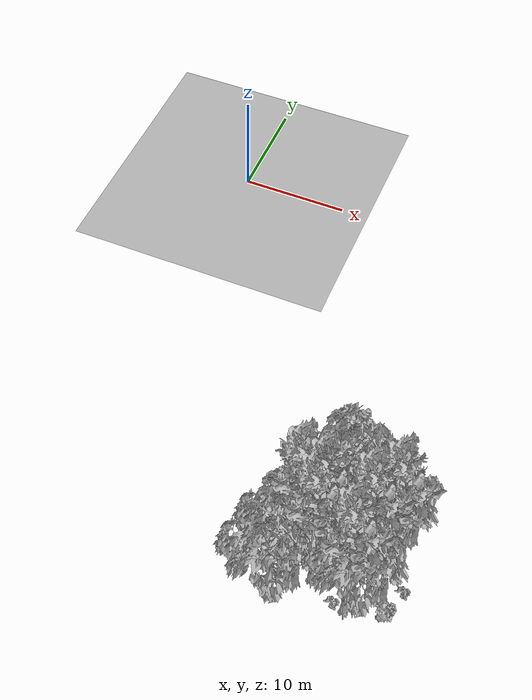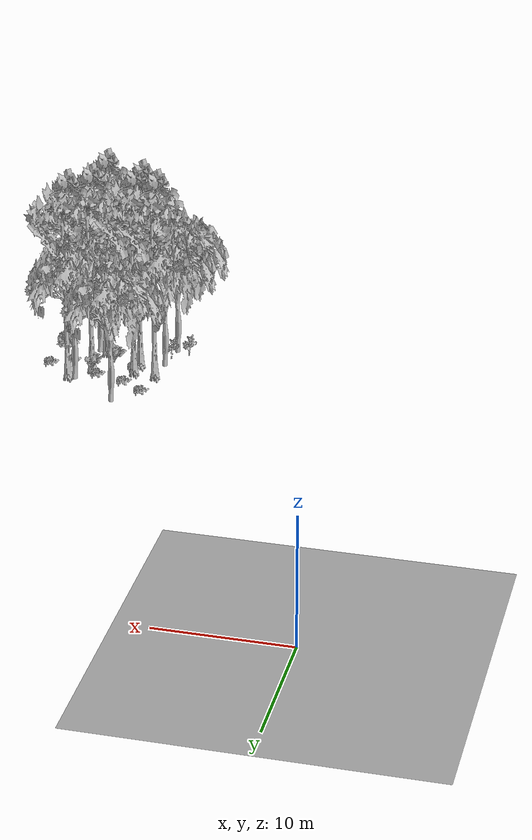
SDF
<sdf version="1.7">
 <world name="default">
  <model name="ground_plane">
   <static>1</static>
   <link name="link">
    <collision name="collision">
     <pose>-50 0 0 0 -0 0</pose>
     <geometry><plane><normal>0 0 1</normal><size>80 80</size></plane></geometry>
     <surface><contact><ode><min_depth>0.01</min_depth><max_vel>0</max_vel></ode></contact></surface>
    </collision>
    <visual name="grass">
     <cast_shadows>0</cast_shadows>
     <geometry>
      <mesh>
       <scale>0.46714285714285714 0.46714285714285714 0.1</scale>
       <uri>file://grass_plane/meshes/grass_plane.dae</uri>
      </mesh>
     </geometry>
    </visual>
   </link>
  </model>
  <model name="Tree 0">
   <static>1</static>
   <pose>26.365670534095116 -34.29726141774025 0 1.57079 -0 0</pose>
   <link name="link">
    <collision name="collision">
     <geometry><mesh><scale>3.5 5 3.5</scale><uri>model://tree_9/meshes/tree_9.obj</uri></mesh></geometry>
    </collision>
    <visual name="visual">
     <geometry><mesh><scale>3.5 5 3.5</scale><uri>model://tree_9/meshes/tree_9.obj</uri></mesh></geometry>
    </visual>
   </link>
  </model>
  <model name="Tree 37">
   <static>1</static>
   <pose>24.551823431876542 -38.94281338013918 0 1.57079 -0 0</pose>
   <link name="link">
    <collision name="collision">
     <geometry><mesh><scale>3.5 5 3.5</scale><uri>model://tree_9/meshes/tree_9.obj</uri></mesh></geometry>
    </collision>
    <visual name="visual">
     <geometry><mesh><scale>3.5 5 3.5</scale><uri>model://tree_9/meshes/tree_9.obj</uri></mesh></geometry>
    </visual>
   </link>
  </model>
  <model name="Tree 73">
   <static>1</static>
   <pose>21.498788642779893 -36.14084156872067 0 1.57079 -0 0</pose>
   <link name="link">
    <collision name="collision">
     <geometry><mesh><scale>3.5 5 3.5</scale><uri>model://tree_9/meshes/tree_9.obj</uri></mesh></geometry>
    </collision>
    <visual name="visual">
     <geometry><mesh><scale>3.5 5 3.5</scale><uri>model://tree_9/meshes/tree_9.obj</uri></mesh></geometry>
    </visual>
   </link>
  </model>
  <model name="Tree 264">
   <static>1</static>
   <pose>21.35924062898971 -37.50093798511435 0 1.57079 -0 0</pose>
   <link name="link">
    <collision name="collision">
     <geometry><mesh><scale>3.5 5 3.5</scale><uri>model://tree_9/meshes/tree_9.obj</uri></mesh></geometry>
    </collision>
    <visual name="visual">
     <geometry><mesh><scale>3.5 5 3.5</scale><uri>model://tree_9/meshes/tree_9.obj</uri></mesh></geometry>
    </visual>
   </link>
  </model>
  <model name="Tree 331">
   <static>1</static>
   <pose>19.186208184037852 -37.35512509268272 0 1.57079 -0 0</pose>
   <link name="link">
    <collision name="collision">
     <geometry><mesh><scale>3.5 5 3.5</scale><uri>model://tree_2/meshes/tree_2.obj</uri></mesh></geometry>
    </collision>
    <visual name="visual">
     <geometry><mesh><scale>3.5 5 3.5</scale><uri>model://tree_2/meshes/tree_2.obj</uri></mesh></geometry>
    </visual>
   </link>
  </model>
  <model name="Tree 347">
   <static>1</static>
   <pose>24.863633949130893 -35.88209329109177 0 1.57079 -0 0</pose>
   <link name="link">
    <collision name="collision">
     <geometry><mesh><scale>3.5 5 3.5</scale><uri>model://tree_9/meshes/tree_9.obj</uri></mesh></geometry>
    </collision>
    <visual name="visual">
     <geometry><mesh><scale>3.5 5 3.5</scale><uri>model://tree_9/meshes/tree_9.obj</uri></mesh></geometry>
    </visual>
   </link>
  </model>
  <model name="Tree 453">
   <static>1</static>
   <pose>18.857431620565954 -39.96904018411829 0 1.57079 -0 0</pose>
   <link name="link">
    <collision name="collision">
     <geometry><mesh><scale>3.5 5 3.5</scale><uri>model://tree_2/meshes/tree_2.obj</uri></mesh></geometry>
    </collision>
    <visual name="visual">
     <geometry><mesh><scale>3.5 5 3.5</scale><uri>model://tree_2/meshes/tree_2.obj</uri></mesh></geometry>
    </visual>
   </link>
  </model>
  <model name="Tree 461">
   <static>1</static>
   <pose>24.86876233108935 -38.56500119443688 0 1.57079 -0 0</pose>
   <link name="link">
    <collision name="collision">
     <geometry><mesh><scale>3.5 5 3.5</scale><uri>model://tree_2/meshes/tree_2.obj</uri></mesh></geometry>
    </collision>
    <visual name="visual">
     <geometry><mesh><scale>3.5 5 3.5</scale><uri>model://tree_2/meshes/tree_2.obj</uri></mesh></geometry>
    </visual>
   </link>
  </model>
  <model name="Tree 572">
   <static>1</static>
   <pose>21.632556651155227 -30.56825681799797 0 1.57079 -0 0</pose>
   <link name="link">
    <collision name="collision">
     <geometry><mesh><scale>3.5 5 3.5</scale><uri>model://tree_2/meshes/tree_2.obj</uri></mesh></geometry>
    </collision>
    <visual name="visual">
     <geometry><mesh><scale>3.5 5 3.5</scale><uri>model://tree_2/meshes/tree_2.obj</uri></mesh></geometry>
    </visual>
   </link>
  </model>
  <model name="Tree 589">
   <static>1</static>
   <pose>25.45622417846181 -33.54120456081823 0 1.57079 -0 0</pose>
   <link name="link">
    <collision name="collision">
     <geometry><mesh><scale>3.5 5 3.5</scale><uri>model://tree_2/meshes/tree_2.obj</uri></mesh></geometry>
    </collision>
    <visual name="visual">
     <geometry><mesh><scale>3.5 5 3.5</scale><uri>model://tree_2/meshes/tree_2.obj</uri></mesh></geometry>
    </visual>
   </link>
  </model>
  <model name="Tree 614">
   <static>1</static>
   <pose>19.72452354816197 -35.877890817409266 0 1.57079 -0 0</pose>
   <link name="link">
    <collision name="collision">
     <geometry><mesh><scale>3.5 5 3.5</scale><uri>model://tree_9/meshes/tree_9.obj</uri></mesh></geometry>
    </collision>
    <visual name="visual">
     <geometry><mesh><scale>3.5 5 3.5</scale><uri>model://tree_9/meshes/tree_9.obj</uri></mesh></geometry>
    </visual>
   </link>
  </model>
  <model name="Bush 4">
   <static>1</static>
   <pose>23.329204030782314 -36.91161911553173 0 1.57079 -0 0</pose>
   <link name="link">
    <collision name="collision">
     <geometry><mesh><scale>2 2 2</scale><uri>model://bush_0/meshes/bush_0.obj</uri></mesh></geometry>
     <surface><contact><collide_without_contact>false</collide_without_contact></contact></surface>
    </collision>
    <visual name="visual">
     <geometry><mesh><scale>2 2 2</scale><uri>model://bush_0/meshes/bush_0.obj</uri></mesh></geometry>
    </visual>
   </link>
  </model>
  <model name="Bush 60">
   <static>1</static>
   <pose>26.648925421087725 -36.5752505203978 0 1.57079 -0 0</pose>
   <link name="link">
    <collision name="collision">
     <geometry><mesh><scale>2 2 2</scale><uri>model://bush_2/meshes/bush_2.obj</uri></mesh></geometry>
     <surface><contact><collide_without_contact>false</collide_without_contact></contact></surface>
    </collision>
    <visual name="visual">
     <geometry><mesh><scale>2 2 2</scale><uri>model://bush_2/meshes/bush_2.obj</uri></mesh></geometry>
    </visual>
   </link>
  </model>
  <model name="Bush 82">
   <static>1</static>
   <pose>24.691328176599676 -35.35399988062564 0 1.57079 -0 0</pose>
   <link name="link">
    <collision name="collision">
     <geometry><mesh><scale>2 2 2</scale><uri>model://bush_0/meshes/bush_0.obj</uri></mesh></geometry>
     <surface><contact><collide_without_contact>false</collide_without_contact></contact></surface>
    </collision>
    <visual name="visual">
     <geometry><mesh><scale>2 2 2</scale><uri>model://bush_0/meshes/bush_0.obj</uri></mesh></geometry>
    </visual>
   </link>
  </model>
  <model name="Bush 169">
   <static>1</static>
   <pose>21.578635549209878 -36.50540210387629 0 1.57079 -0 0</pose>
   <link name="link">
    <collision name="collision">
     <geometry><mesh><scale>2 2 2</scale><uri>model://bush_2/meshes/bush_2.obj</uri></mesh></geometry>
     <surface><contact><collide_without_contact>false</collide_without_contact></contact></surface>
    </collision>
    <visual name="visual">
     <geometry><mesh><scale>2 2 2</scale><uri>model://bush_2/meshes/bush_2.obj</uri></mesh></geometry>
    </visual>
   </link>
  </model>
  <model name="Bush 197">
   <static>1</static>
   <pose>24.102743171423313 -34.71340042521576 0 1.57079 -0 0</pose>
   <link name="link">
    <collision name="collision">
     <geometry><mesh><scale>2 2 2</scale><uri>model://bush_2/meshes/bush_2.obj</uri></mesh></geometry>
     <surface><contact><collide_without_contact>false</collide_without_contact></contact></surface>
    </collision>
    <visual name="visual">
     <geometry><mesh><scale>2 2 2</scale><uri>model://bush_2/meshes/bush_2.obj</uri></mesh></geometry>
    </visual>
   </link>
  </model>
  <model name="Bush 202">
   <static>1</static>
   <pose>23.527878102011556 -38.68157285573382 0 1.57079 -0 0</pose>
   <link name="link">
    <collision name="collision">
     <geometry><mesh><scale>2 2 2</scale><uri>model://bush_2/meshes/bush_2.obj</uri></mesh></geometry>
     <surface><contact><collide_without_contact>false</collide_without_contact></contact></surface>
    </collision>
    <visual name="visual">
     <geometry><mesh><scale>2 2 2</scale><uri>model://bush_2/meshes/bush_2.obj</uri></mesh></geometry>
    </visual>
   </link>
  </model>
  <model name="Bush 325">
   <static>1</static>
   <pose>19.112026333231626 -38.6009775036362 0 1.57079 -0 0</pose>
   <link name="link">
    <collision name="collision">
     <geometry><mesh><scale>2 2 2</scale><uri>model://bush_5/meshes/bush_5.obj</uri></mesh></geometry>
     <surface><contact><collide_without_contact>false</collide_without_contact></contact></surface>
    </collision>
    <visual name="visual">
     <geometry><mesh><scale>2 2 2</scale><uri>model://bush_5/meshes/bush_5.obj</uri></mesh></geometry>
    </visual>
   </link>
  </model>
  <model name="Bush 328">
   <static>1</static>
   <pose>17.89512209347224 -39.439965363698946 0 1.57079 -0 0</pose>
   <link name="link">
    <collision name="collision">
     <geometry><mesh><scale>2 2 2</scale><uri>model://bush_5/meshes/bush_5.obj</uri></mesh></geometry>
     <surface><contact><collide_without_contact>false</collide_without_contact></contact></surface>
    </collision>
    <visual name="visual">
     <geometry><mesh><scale>2 2 2</scale><uri>model://bush_5/meshes/bush_5.obj</uri></mesh></geometry>
    </visual>
   </link>
  </model>
  <model name="Bush 426">
   <static>1</static>
   <pose>19.98977559894469 -32.72727180289717 0 1.57079 -0 0</pose>
   <link name="link">
    <collision name="collision">
     <geometry><mesh><scale>2 2 2</scale><uri>model://bush_2/meshes/bush_2.obj</uri></mesh></geometry>
     <surface><contact><collide_without_contact>false</collide_without_contact></contact></surface>
    </collision>
    <visual name="visual">
     <geometry><mesh><scale>2 2 2</scale><uri>model://bush_2/meshes/bush_2.obj</uri></mesh></geometry>
    </visual>
   </link>
  </model>
  <model name="Bush 445">
   <static>1</static>
   <pose>28.246539804210272 -35.78433835895025 0 1.57079 -0 0</pose>
   <link name="link">
    <collision name="collision">
     <geometry><mesh><scale>2 2 2</scale><uri>model://bush_2/meshes/bush_2.obj</uri></mesh></geometry>
     <surface><contact><collide_without_contact>false</collide_without_contact></contact></surface>
    </collision>
    <visual name="visual">
     <geometry><mesh><scale>2 2 2</scale><uri>model://bush_2/meshes/bush_2.obj</uri></mesh></geometry>
    </visual>
   </link>
  </model>
  <model name="Bush 534">
   <static>1</static>
   <pose>27.515918464848028 -38.29665483124394 0 1.57079 -0 0</pose>
   <link name="link">
    <collision name="collision">
     <geometry><mesh><scale>2 2 2</scale><uri>model://bush_1/meshes/bush_1.obj</uri></mesh></geometry>
     <surface><contact><collide_without_contact>false</collide_without_contact></contact></surface>
    </collision>
    <visual name="visual">
     <geometry><mesh><scale>2 2 2</scale><uri>model://bush_1/meshes/bush_1.obj</uri></mesh></geometry>
    </visual>
   </link>
  </model>
  <model name="Bush 574">
   <static>1</static>
   <pose>21.732851165513203 -33.95659563374749 0 1.57079 -0 0</pose>
   <link name="link">
    <collision name="collision">
     <geometry><mesh><scale>2 2 2</scale><uri>model://bush_2/meshes/bush_2.obj</uri></mesh></geometry>
     <surface><contact><collide_without_contact>false</collide_without_contact></contact></surface>
    </collision>
    <visual name="visual">
     <geometry><mesh><scale>2 2 2</scale><uri>model://bush_2/meshes/bush_2.obj</uri></mesh></geometry>
    </visual>
   </link>
  </model>
 </world>
</sdf>
